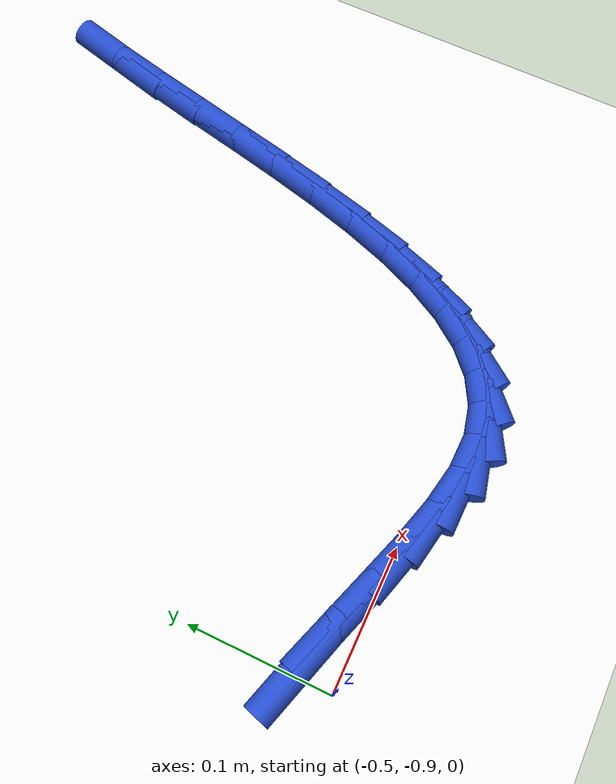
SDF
<sdf version="1.6">
 <world name="default">
  <model name="ground_plane">
   <static>1</static>
   <link name="link">
    <collision name="collision">
     <geometry><plane><normal>0 0 1</normal><size>100 100</size></plane></geometry>
     <surface><friction><ode><mu>100</mu><mu2>50</mu2></ode></friction></surface>
    </collision>
    <visual name="visual">
     <cast_shadows>0</cast_shadows>
     <geometry><plane><normal>0 0 1</normal><size>100 100</size></plane></geometry>
     <material>
      <script><uri>file://media/materials/scripts/gazebo.material</uri><name>Gazebo/WhiteGlow</name></script>
     </material>
    </visual>
   </link>
  </model>
  <model name="line">
   <link name="link_202">
    <pose>-0.49307826419618656 -0.8748435715255682 0.01 0 1.57 -0.2957069802645378</pose>
    <collision name="collision">
     <geometry><cylinder><radius>0.01</radius><length>0.08</length></cylinder></geometry>
    </collision>
    <visual name="visual">
     <material>
      <script><name>Gazebo/Blue</name><uri>file://media/materials/scripts/gazebo.material</uri></script>
     </material>
     <geometry><cylinder><radius>0.01</radius><length>0.08</length></cylinder></geometry>
    </visual>
   </link>
   <link name="link_203">
    <pose>-0.4612038203189467 -0.8845537589174816 0.01 0 1.57 -0.3278306314241715</pose>
    <collision name="collision">
     <geometry><cylinder><radius>0.01</radius><length>0.08</length></cylinder></geometry>
    </collision>
    <visual name="visual">
     <material>
      <script><name>Gazebo/Blue</name><uri>file://media/materials/scripts/gazebo.material</uri></script>
     </material>
     <geometry><cylinder><radius>0.01</radius><length>0.08</length></cylinder></geometry>
    </visual>
   </link>
   <link name="link_204">
    <pose>-0.42924744562092826 -0.8954222107102118 0.01 0 1.57 -0.3232528499458837</pose>
    <collision name="collision">
     <geometry><cylinder><radius>0.01</radius><length>0.08</length></cylinder></geometry>
    </collision>
    <visual name="visual">
     <material>
      <script><name>Gazebo/Blue</name><uri>file://media/materials/scripts/gazebo.material</uri></script>
     </material>
     <geometry><cylinder><radius>0.01</radius><length>0.08</length></cylinder></geometry>
    </visual>
   </link>
   <link name="link_205">
    <pose>-0.3978533800103137 -0.9059393290582606 0.01 0 1.57 -0.279254393254869</pose>
    <collision name="collision">
     <geometry><cylinder><radius>0.01</radius><length>0.08</length></cylinder></geometry>
    </collision>
    <visual name="visual">
     <material>
      <script><name>Gazebo/Blue</name><uri>file://media/materials/scripts/gazebo.material</uri></script>
     </material>
     <geometry><cylinder><radius>0.01</radius><length>0.08</length></cylinder></geometry>
    </visual>
   </link>
   <link name="link_206">
    <pose>-0.3676658633952854 -0.9145955161161295 0.01 0 1.57 -0.18441100531055898</pose>
    <collision name="collision">
     <geometry><cylinder><radius>0.01</radius><length>0.08</length></cylinder></geometry>
    </collision>
    <visual name="visual">
     <material>
      <script><name>Gazebo/Blue</name><uri>file://media/materials/scripts/gazebo.material</uri></script>
     </material>
     <geometry><cylinder><radius>0.01</radius><length>0.08</length></cylinder></geometry>
    </visual>
   </link>
   <link name="link_207">
    <pose>-0.33932913568402623 -0.9198811740383208 0.01 0 1.57 -0.015696438912098747</pose>
    <collision name="collision">
     <geometry><cylinder><radius>0.01</radius><length>0.08</length></cylinder></geometry>
    </collision>
    <visual name="visual">
     <material>
      <script><name>Gazebo/Blue</name><uri>file://media/materials/scripts/gazebo.material</uri></script>
     </material>
     <geometry><cylinder><radius>0.01</radius><length>0.08</length></cylinder></geometry>
    </visual>
   </link>
   <link name="link_208">
    <pose>-0.3134873803430351 -0.92028683088796 0.01 0 1.57 0.23822953912992234</pose>
    <collision name="collision">
     <geometry><cylinder><radius>0.01</radius><length>0.08</length></cylinder></geometry>
    </collision>
    <visual name="visual">
     <material>
      <script><name>Gazebo/Blue</name><uri>file://media/materials/scripts/gazebo.material</uri></script>
     </material>
     <geometry><cylinder><radius>0.01</radius><length>0.08</length></cylinder></geometry>
    </visual>
   </link>
   <link name="link_209">
    <pose>-0.29059449510633895 -0.914727499143152 0.01 0 1.57 0.5096740091246597</pose>
    <collision name="collision">
     <geometry><cylinder><radius>0.01</radius><length>0.08</length></cylinder></geometry>
    </collision>
    <visual name="visual">
     <material>
      <script><name>Gazebo/Blue</name><uri>file://media/materials/scripts/gazebo.material</uri></script>
     </material>
     <geometry><cylinder><radius>0.01</radius><length>0.08</length></cylinder></geometry>
    </visual>
   </link>
   <link name="link_210">
    <pose>-0.2704893732134851 -0.9034901271578738 0.01 0 1.57 0.7485807130337471</pose>
    <collision name="collision">
     <geometry><cylinder><radius>0.01</radius><length>0.08</length></cylinder></geometry>
    </collision>
    <visual name="visual">
     <material>
      <script><name>Gazebo/Blue</name><uri>file://media/materials/scripts/gazebo.material</uri></script>
     </material>
     <geometry><cylinder><radius>0.01</radius><length>0.08</length></cylinder></geometry>
    </visual>
   </link>
   <link name="link_211">
    <pose>-0.2528868898888893 -0.8871383194174678 0.01 0 1.57 0.9362961287027277</pose>
    <collision name="collision">
     <geometry><cylinder><radius>0.01</radius><length>0.08</length></cylinder></geometry>
    </collision>
    <visual name="visual">
     <material>
      <script><name>Gazebo/Blue</name><uri>file://media/materials/scripts/gazebo.material</uri></script>
     </material>
     <geometry><cylinder><radius>0.01</radius><length>0.08</length></cylinder></geometry>
    </visual>
   </link>
   <link name="link_212">
    <pose>-0.2375019203569675 -0.8662356804072768 0.01 0 1.57 1.075288214536999</pose>
    <collision name="collision">
     <geometry><cylinder><radius>0.01</radius><length>0.08</length></cylinder></geometry>
    </collision>
    <visual name="visual">
     <material>
      <script><name>Gazebo/Blue</name><uri>file://media/materials/scripts/gazebo.material</uri></script>
     </material>
     <geometry><cylinder><radius>0.01</radius><length>0.08</length></cylinder></geometry>
    </visual>
   </link>
   <link name="link_213">
    <pose>-0.2240493398421353 -0.841345814612643 0.01 0 1.57 1.1757635882314084</pose>
    <collision name="collision">
     <geometry><cylinder><radius>0.01</radius><length>0.08</length></cylinder></geometry>
    </collision>
    <visual name="visual">
     <material>
      <script><name>Gazebo/Blue</name><uri>file://media/materials/scripts/gazebo.material</uri></script>
     </material>
     <geometry><cylinder><radius>0.01</radius><length>0.08</length></cylinder></geometry>
    </visual>
   </link>
   <link name="link_214">
    <pose>-0.21224402356880856 -0.813032326518909 0.01 0 1.57 1.2475450139046953</pose>
    <collision name="collision">
     <geometry><cylinder><radius>0.01</radius><length>0.08</length></cylinder></geometry>
    </collision>
    <visual name="visual">
     <material>
      <script><name>Gazebo/Blue</name><uri>file://media/materials/scripts/gazebo.material</uri></script>
     </material>
     <geometry><cylinder><radius>0.01</radius><length>0.08</length></cylinder></geometry>
    </visual>
   </link>
   <link name="link_215">
    <pose>-0.20180084676140286 -0.7818588206114162 0.01 0 1.57 1.297937662559829</pose>
    <collision name="collision">
     <geometry><cylinder><radius>0.01</radius><length>0.08</length></cylinder></geometry>
    </collision>
    <visual name="visual">
     <material>
      <script><name>Gazebo/Blue</name><uri>file://media/materials/scripts/gazebo.material</uri></script>
     </material>
     <geometry><cylinder><radius>0.01</radius><length>0.08</length></cylinder></geometry>
    </visual>
   </link>
   <link name="link_216">
    <pose>-0.19243468464433441 -0.7483889013755085 0.01 0 1.57 1.3318800330912735</pose>
    <collision name="collision">
     <geometry><cylinder><radius>0.01</radius><length>0.08</length></cylinder></geometry>
    </collision>
    <visual name="visual">
     <material>
      <script><name>Gazebo/Blue</name><uri>file://media/materials/scripts/gazebo.material</uri></script>
     </material>
     <geometry><cylinder><radius>0.01</radius><length>0.08</length></cylinder></geometry>
    </visual>
   </link>
   <link name="link_217">
    <pose>-0.18386041244201876 -0.7131861732965278 0.01 0 1.57 1.3525242026956408</pose>
    <collision name="collision">
     <geometry><cylinder><radius>0.01</radius><length>0.08</length></cylinder></geometry>
    </collision>
    <visual name="visual">
     <material>
      <script><name>Gazebo/Blue</name><uri>file://media/materials/scripts/gazebo.material</uri></script>
     </material>
     <geometry><cylinder><radius>0.01</radius><length>0.08</length></cylinder></geometry>
    </visual>
   </link>
   <link name="link_218">
    <pose>-0.1757929053788717 -0.6768142408598165 0.01 0 1.57 1.3617178036453135</pose>
    <collision name="collision">
     <geometry><cylinder><radius>0.01</radius><length>0.08</length></cylinder></geometry>
    </collision>
    <visual name="visual">
     <material>
      <script><name>Gazebo/Blue</name><uri>file://media/materials/scripts/gazebo.material</uri></script>
     </material>
     <geometry><cylinder><radius>0.01</radius><length>0.08</length></cylinder></geometry>
    </visual>
   </link>
   <link name="link_219">
    <pose>-0.16794703867930896 -0.6398367085507168 0.01 0 1.57 1.3603075445231367</pose>
    <collision name="collision">
     <geometry><cylinder><radius>0.01</radius><length>0.08</length></cylinder></geometry>
    </collision>
    <visual name="visual">
     <material>
      <script><name>Gazebo/Blue</name><uri>file://media/materials/scripts/gazebo.material</uri></script>
     </material>
     <geometry><cylinder><radius>0.01</radius><length>0.08</length></cylinder></geometry>
    </visual>
   </link>
   <link name="link_220">
    <pose>-0.1600376875677464 -0.6028171808545714 0.01 0 1.57 1.3482844540326355</pose>
    <collision name="collision">
     <geometry><cylinder><radius>0.01</radius><length>0.08</length></cylinder></geometry>
    </collision>
    <visual name="visual">
     <material>
      <script><name>Gazebo/Blue</name><uri>file://media/materials/scripts/gazebo.material</uri></script>
     </material>
     <geometry><cylinder><radius>0.01</radius><length>0.08</length></cylinder></geometry>
    </visual>
   </link>
   <link name="link_221">
    <pose>-0.15177972726859973 -0.5663192622567225 0.01 0 1.57 1.3247942186833848</pose>
    <collision name="collision">
     <geometry><cylinder><radius>0.01</radius><length>0.08</length></cylinder></geometry>
    </collision>
    <visual name="visual">
     <material>
      <script><name>Gazebo/Blue</name><uri>file://media/materials/scripts/gazebo.material</uri></script>
     </material>
     <geometry><cylinder><radius>0.01</radius><length>0.08</length></cylinder></geometry>
    </visual>
   </link>
  </model>
 </world>
</sdf>
